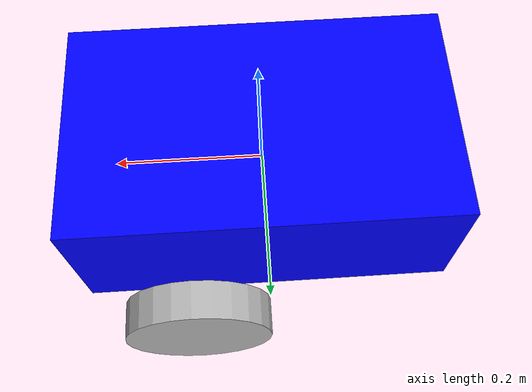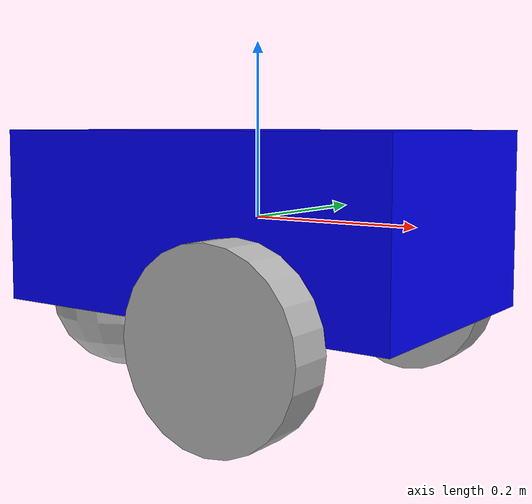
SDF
<?xml version="1.0" ?>
<sdf version="1.8">
<model name="research_bot">
    <link name="base_link">
        <inertial>
            <mass>1.0</mass>
            <inertia><ixx>0.1</ixx><ixy>0</ixy><ixz>0</ixz><iyy>0.1</iyy><iyz>0</iyz><izz>0.1</izz></inertia>
        </inertial>
        <visual name="visual">
            <geometry><box><size>0.5 0.3 0.2</size></box></geometry>
            <material><ambient>0.0 0.0 1.0 1</ambient><diffuse>0.0 0.0 1.0 1</diffuse></material>
        </visual>
        <collision name="collision"><geometry><box><size>0.5 0.3 0.2</size></box></geometry></collision>
        <sensor name="lidar" type="gpu_lidar">
            <pose>0 0 0.15 0 0 0</pose>
            <topic>lidar</topic>
            <update_rate>10</update_rate>
            <ray>
                <scan>
                    <horizontal>
                        <samples>360</samples>
                        <resolution>1</resolution>
                        <min_angle>-3.14</min_angle>
                        <max_angle>3.14</max_angle>
                    </horizontal>
                </scan>
                <range><min>0.1</min><max>10.0</max></range>
            </ray>
            <always_on>1</always_on>
            <visualize>true</visualize>
        </sensor>
    </link>
    <link name="left_wheel">
        <pose>0.1 0.2 -0.1 -1.57 0 0</pose>
        <visual name="visual"><geometry><cylinder><radius>0.1</radius><length>0.05</length></cylinder></geometry></visual>
        <collision name="collision"><geometry><cylinder><radius>0.1</radius><length>0.05</length></cylinder></geometry></collision>
    </link>
    <link name="right_wheel">
        <pose>0.1 -0.2 -0.1 -1.57 0 0</pose>
        <visual name="visual"><geometry><cylinder><radius>0.1</radius><length>0.05</length></cylinder></geometry></visual>
        <collision name="collision"><geometry><cylinder><radius>0.1</radius><length>0.05</length></cylinder></geometry></collision>
    </link>
    <link name="caster">
        <pose>-0.2 0 -0.1 0 0 0</pose>
        <visual name="visual"><geometry><sphere><radius>0.1</radius></sphere></geometry></visual>
        <collision name="collision"><geometry><sphere><radius>0.1</radius></sphere></geometry></collision>
    </link>
    <joint name="left_wheel_joint" type="revolute">
        <parent>base_link</parent><child>left_wheel</child><axis><xyz>0 0 1</xyz></axis>
    </joint>
    <joint name="right_wheel_joint" type="revolute">
        <parent>base_link</parent><child>right_wheel</child><axis><xyz>0 0 1</xyz></axis>
    </joint>
    <plugin filename="gz-sim-diff-drive-system" name="gz::sim::systems::DiffDrive">
        <left_joint>left_wheel_joint</left_joint>
        <right_joint>right_wheel_joint</right_joint>
        <wheel_separation>0.4</wheel_separation>
        <wheel_radius>0.1</wheel_radius>
        <topic>cmd_vel</topic>
        <odom_topic>odometry</odom_topic>
        <tf_topic>tf</tf_topic>
        <frame_id>odom</frame_id>
        <child_frame_id>base_link</child_frame_id>
    </plugin>
</model>
</sdf>
